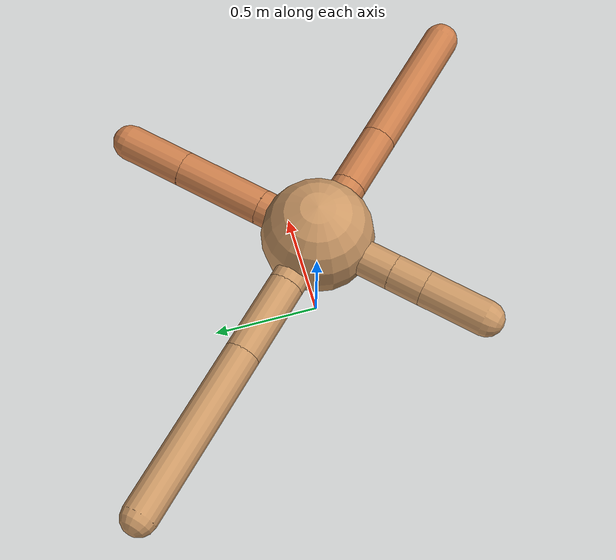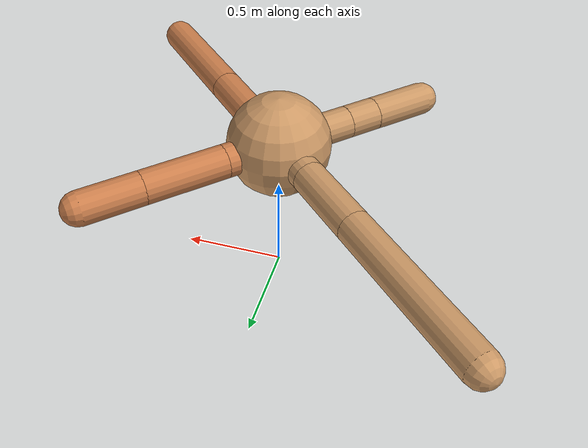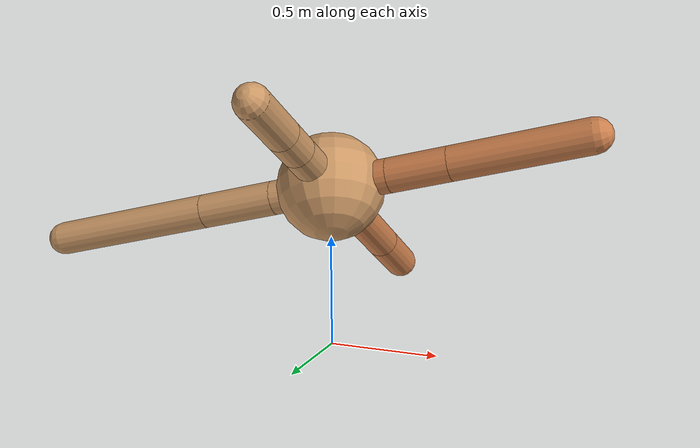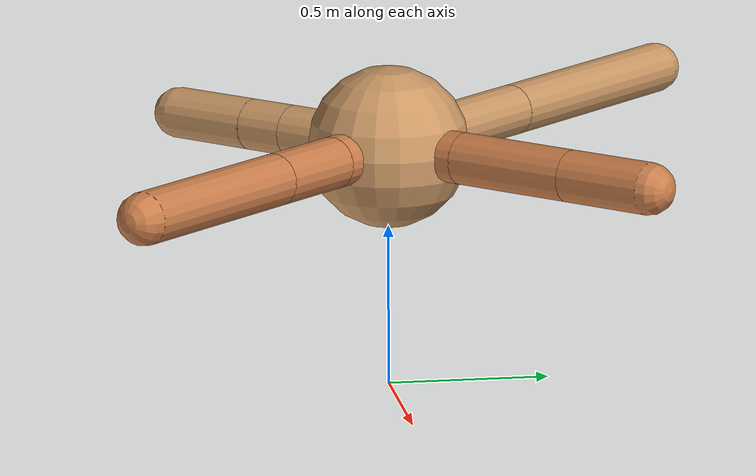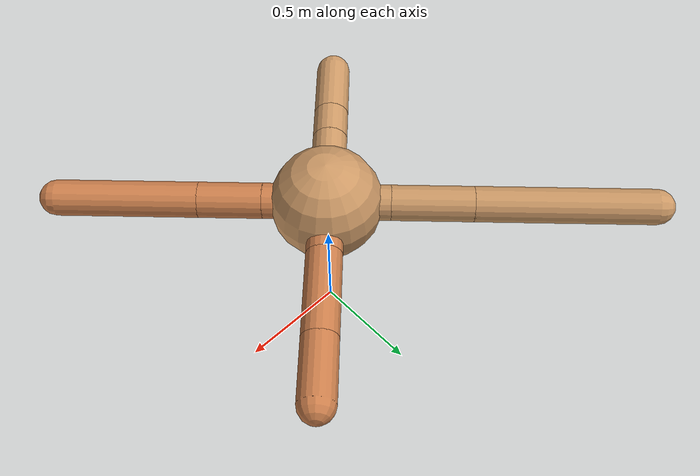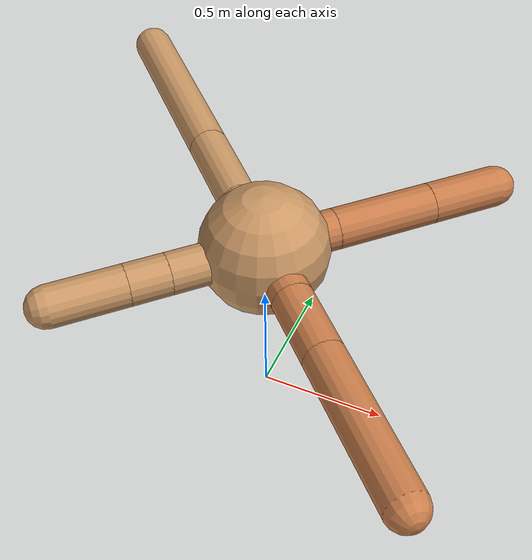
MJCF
<mujoco model="ant">
  <compiler angle="degree" coordinate="local" inertiafromgeom="true" />
  <option integrator="RK4" timestep="0.01" />
  <custom>
    <numeric data="0.0 0.0 0.55 1.0 0.0 0.0 0.0 0.0 1.0 0.0 -1.0 0.0 -1.0 0.0 1.0" name="init_qpos" />
  </custom>
  <default>
    <joint armature="1" damping="1" limited="true" />
    <geom conaffinity="0" condim="3" density="5.0" friction="1.5 0.1 0.1" margin="0.01" rgba="0.8 0.6 0.4 1" />
  </default>
  <worldbody>
    <body name="torso" pos="0 0 0.75">
      <geom name="torso_geom" pos="0 0 0" size="0.25" type="sphere" />

      <body name="front_left_leg" pos="0 0 0">
        <geom fromto="0.0 0.0 0.0 0.2 0.2 0.0" name="aux_1_geom" size="0.08" type="capsule" rgba=".8 .5 .3 1" />
        <body name="aux_1" pos="0.2 0.2 0.0">
          <joint axis="0 0 1" name="hip_1" pos="0.0 0.0 0.0" range="-40 40" type="hinge" />
          <geom fromto="0.0 0.0 0.0 0.28127430469002246 0.28127430469002246 0.0" name="left_leg_geom" size="0.08" type="capsule" rgba=".8 .5 .3 1" />
          <body pos="0.28127430469002246 0.28127430469002246 0.0" name="front_left_foot">
            <joint axis="-1 1 0" name="ankle_1" pos="0.0 0.0 0.0" range="30 100" type="hinge" />
            <geom fromto="0.0 0.0 0.0 0.20194040175228026 0.20194040175228026 0.0" name="left_ankle_geom" size="0.08" type="capsule" rgba=".8 .5 .3 1" />
          </body>
        </body>
      </body>
      <body name="front_right_leg" pos="0 0 0">
        <geom fromto="0.0 0.0 0.0 -0.2 0.2 0.0" name="aux_2_geom" size="0.08" type="capsule" />
        <body name="aux_2" pos="-0.2 0.2 0.0">
          <joint axis="0 0 1" name="hip_2" pos="0.0 0.0 0.0" range="-40 40" type="hinge" />
          <geom fromto="0.0 0.0 0.0 -0.2588273139983858 0.2588273139983858 0.0" name="right_leg_geom" size="0.08" type="capsule" />
          <body pos="-0.2588273139983858 0.2588273139983858 0.0" name="front_right_foot">
            <joint axis="1 1 0" name="ankle_2" pos="0.0 0.0 0.0" range="-100 -30" type="hinge" />
            <geom fromto="0.0 0.0 0.0 -0.5671782892540248 0.5671782892540248 0.0" name="right_ankle_geom" size="0.08" type="capsule" />
          </body>
        </body>
      </body>
      <body name="left_back_leg" pos="0 0 0">
        <geom fromto="0.0 0.0 0.0 -0.2627975021930305 -0.2627975021930305 0.0" name="aux_3_geom" size="0.08" type="capsule" />
        <body name="aux_3" pos="-0.2627975021930305 -0.2627975021930305 0.0">
          <joint axis="0 0 1" name="hip_3" pos="0.0 0.0 0.0" range="-40 40" type="hinge" />
          <geom fromto="0.0 0.0 0.0 -0.10990991662736314 -0.10990991662736314 0.0" name="back_leg_geom" size="0.08" type="capsule" />
          <body pos="-0.10990991662736314 -0.10990991662736314 0.0" name="left_back_foot">
            <joint axis="-1 1 0" name="ankle_3" pos="0.0 0.0 0.0" range="-100 -30" type="hinge" />
            <geom fromto="0.0 0.0 0.0 -0.20510472303162205 -0.20510472303162205 0.0" name="third_ankle_geom" size="0.08" type="capsule" />
          </body>
        </body>
      </body>
      <body name="right_back_leg" pos="0 0 0">
        <geom fromto="0.0 0.0 0.0 0.2 -0.2 0.0" name="aux_4_geom" size="0.08" type="capsule" rgba=".8 .5 .3 1" />
        <body name="aux_4" pos="0.2 -0.2 0.0">
          <joint axis="0 0 1" name="hip_4" pos="0.0 0.0 0.0" range="-40 40" type="hinge" />
          <geom fromto="0.0 0.0 0.0 0.19942080670780418 -0.19942080670780418 0.0" name="rightback_leg_geom" size="0.08" type="capsule" rgba=".8 .5 .3 1" />
          <body pos="0.19942080670780418 -0.19942080670780418 0.0" name="right_back_foot">
            <joint axis="1 1 0" name="ankle_4" pos="0.0 0.0 0.0" range="30 100" type="hinge" />
            <geom fromto="0.0 0.0 0.0 0.44224034875955315 -0.44224034875955315 0.0" name="fourth_ankle_geom" size="0.08" type="capsule" rgba=".8 .5 .3 1" />
          </body>
        </body>
      </body>
    </body>
  </worldbody>
  <actuator>
    <motor ctrllimited="true" ctrlrange="-1.0 1.0" joint="hip_4" gear="150" />
    <motor ctrllimited="true" ctrlrange="-1.0 1.0" joint="ankle_4" gear="150" />
    <motor ctrllimited="true" ctrlrange="-1.0 1.0" joint="hip_1" gear="150" />
    <motor ctrllimited="true" ctrlrange="-1.0 1.0" joint="ankle_1" gear="150" />
    <motor ctrllimited="true" ctrlrange="-1.0 1.0" joint="hip_2" gear="150" />
    <motor ctrllimited="true" ctrlrange="-1.0 1.0" joint="ankle_2" gear="150" />
    <motor ctrllimited="true" ctrlrange="-1.0 1.0" joint="hip_3" gear="150" />
    <motor ctrllimited="true" ctrlrange="-1.0 1.0" joint="ankle_3" gear="150" />
  </actuator>
</mujoco>
